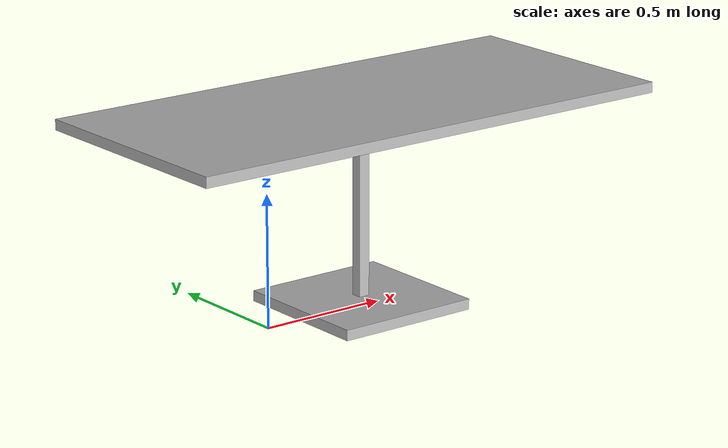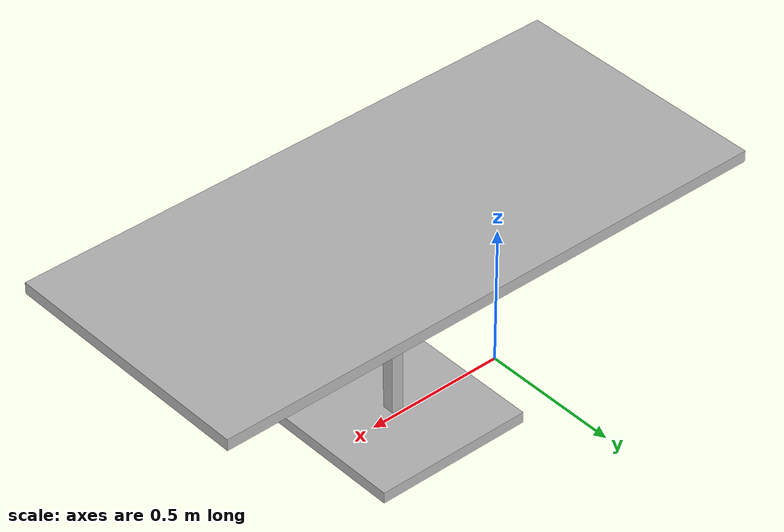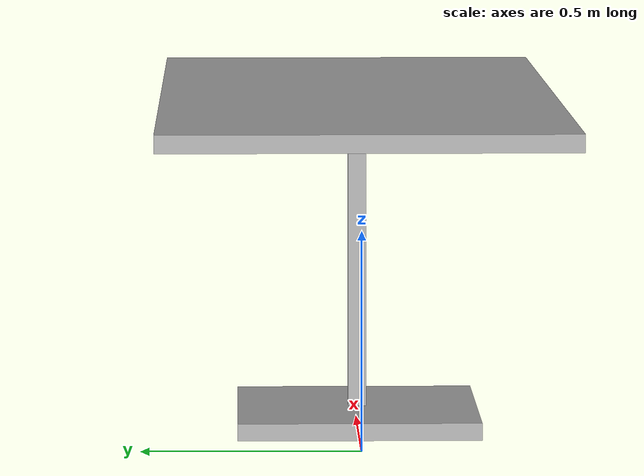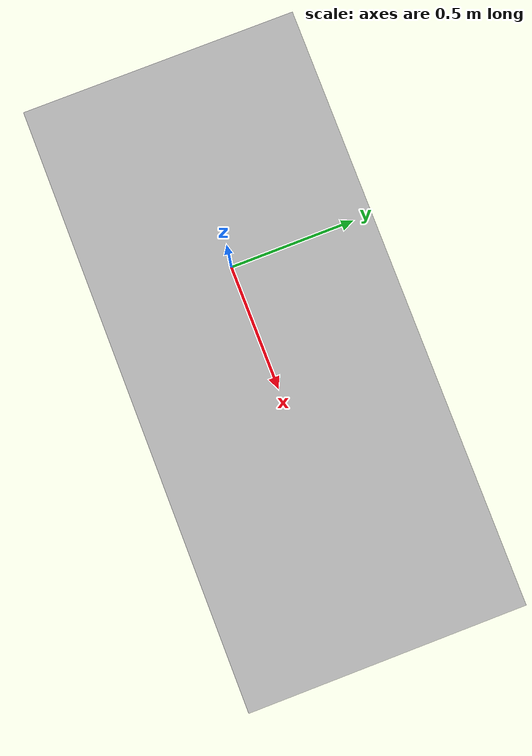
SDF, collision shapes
<?xml version='1.0'?>
<sdf version='1.6'>
  <model name='short_sofa'>
    <link name='link'>
      <pose frame=''>0.420093 0 0 0 -0 0</pose>
      <self_collide>0</self_collide>
      <kinematic>0</kinematic>
      <gravity>1</gravity>
      <inertial>
        <mass>1</mass>
        <pose frame=''>0 0 0 0 -0 0</pose>
        <inertia>
          <ixx>1</ixx>
          <ixy>0</ixy>
          <ixz>0</ixz>
          <iyy>1</iyy>
          <iyz>0</iyz>
          <izz>1</izz>
        </inertia>
      </inertial>
      <visual name='visual'>
        <geometry>
          <mesh>
            <uri>model://cafe_table/meshes/cafe_table.dae</uri>
            <scale>2 1 1</scale>
          </mesh>
        </geometry>
        <material>
          <shader type='pixel'>
            <normal_map>__default__</normal_map>
          </shader>
        </material>
        <pose frame=''>0 0 0 0 -0 0</pose>
        <cast_shadows>1</cast_shadows>
        <transparency>0</transparency>
      </visual>
      <collision name='surface'>
        <laser_retro>0</laser_retro>
        <max_contacts>10</max_contacts>
        <pose frame=''>0 0 0.755 0 -0 0</pose>
        <geometry>
          <box>
            <size>2 0.913 0.04</size>
          </box>
        </geometry>
        <surface>
          <friction>
            <ode>
              <mu>1</mu>
              <mu2>1</mu2>
              <fdir1>0 0 0</fdir1>
              <slip1>0</slip1>
              <slip2>0</slip2>
            </ode>
            <torsional>
              <coefficient>1</coefficient>
              <patch_radius>0</patch_radius>
              <surface_radius>0</surface_radius>
              <use_patch_radius>1</use_patch_radius>
              <ode>
                <slip>0</slip>
              </ode>
            </torsional>
          </friction>
          <bounce>
            <restitution_coefficient>0</restitution_coefficient>
            <threshold>1e+06</threshold>
          </bounce>
          <contact>
            <collide_without_contact>0</collide_without_contact>
            <collide_without_contact_bitmask>1</collide_without_contact_bitmask>
            <collide_bitmask>1</collide_bitmask>
            <ode>
              <soft_cfm>0</soft_cfm>
              <soft_erp>0.2</soft_erp>
              <kp>1e+13</kp>
              <kd>1</kd>
              <max_vel>0.01</max_vel>
              <min_depth>0</min_depth>
            </ode>
            <bullet>
              <split_impulse>1</split_impulse>
              <split_impulse_penetration_threshold>-0.01</split_impulse_penetration_threshold>
              <soft_cfm>0</soft_cfm>
              <soft_erp>0.2</soft_erp>
              <kp>1e+13</kp>
              <kd>1</kd>
            </bullet>
          </contact>
        </surface>
      </collision>
      <collision name='column'>
        <laser_retro>0</laser_retro>
        <max_contacts>10</max_contacts>
        <pose frame=''>0 0 0.37 0 -0 0</pose>
        <geometry>
          <box>
            <size>0.042 0.042 0.74</size>
          </box>
        </geometry>
        <surface>
          <friction>
            <ode>
              <mu>1</mu>
              <mu2>1</mu2>
              <fdir1>0 0 0</fdir1>
              <slip1>0</slip1>
              <slip2>0</slip2>
            </ode>
            <torsional>
              <coefficient>1</coefficient>
              <patch_radius>0</patch_radius>
              <surface_radius>0</surface_radius>
              <use_patch_radius>1</use_patch_radius>
              <ode>
                <slip>0</slip>
              </ode>
            </torsional>
          </friction>
          <bounce>
            <restitution_coefficient>0</restitution_coefficient>
            <threshold>1e+06</threshold>
          </bounce>
          <contact>
            <collide_without_contact>0</collide_without_contact>
            <collide_without_contact_bitmask>1</collide_without_contact_bitmask>
            <collide_bitmask>1</collide_bitmask>
            <ode>
              <soft_cfm>0</soft_cfm>
              <soft_erp>0.2</soft_erp>
              <kp>1e+13</kp>
              <kd>1</kd>
              <max_vel>0.01</max_vel>
              <min_depth>0</min_depth>
            </ode>
            <bullet>
              <split_impulse>1</split_impulse>
              <split_impulse_penetration_threshold>-0.01</split_impulse_penetration_threshold>
              <soft_cfm>0</soft_cfm>
              <soft_erp>0.2</soft_erp>
              <kp>1e+13</kp>
              <kd>1</kd>
            </bullet>
          </contact>
        </surface>
      </collision>
      <collision name='base'>
        <laser_retro>0</laser_retro>
        <max_contacts>10</max_contacts>
        <pose frame=''>0 0 0.02 0 -0 0</pose>
        <geometry>
          <box>
            <size>0.56 0.56 0.04</size>
          </box>
        </geometry>
        <surface>
          <friction>
            <ode>
              <mu>1</mu>
              <mu2>1</mu2>
              <fdir1>0 0 0</fdir1>
              <slip1>0</slip1>
              <slip2>0</slip2>
            </ode>
            <torsional>
              <coefficient>1</coefficient>
              <patch_radius>0</patch_radius>
              <surface_radius>0</surface_radius>
              <use_patch_radius>1</use_patch_radius>
              <ode>
                <slip>0</slip>
              </ode>
            </torsional>
          </friction>
          <bounce>
            <restitution_coefficient>0</restitution_coefficient>
            <threshold>1e+06</threshold>
          </bounce>
          <contact>
            <collide_without_contact>0</collide_without_contact>
            <collide_without_contact_bitmask>1</collide_without_contact_bitmask>
            <collide_bitmask>1</collide_bitmask>
            <ode>
              <soft_cfm>0</soft_cfm>
              <soft_erp>0.2</soft_erp>
              <kp>1e+13</kp>
              <kd>1</kd>
              <max_vel>0.01</max_vel>
              <min_depth>0</min_depth>
            </ode>
            <bullet>
              <split_impulse>1</split_impulse>
              <split_impulse_penetration_threshold>-0.01</split_impulse_penetration_threshold>
              <soft_cfm>0</soft_cfm>
              <soft_erp>0.2</soft_erp>
              <kp>1e+13</kp>
              <kd>1</kd>
            </bullet>
          </contact>
        </surface>
      </collision>
    </link>
    <static>1</static>
    <allow_auto_disable>1</allow_auto_disable>
  </model>
</sdf>
